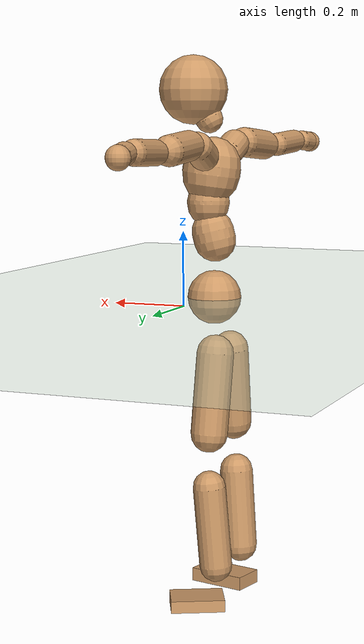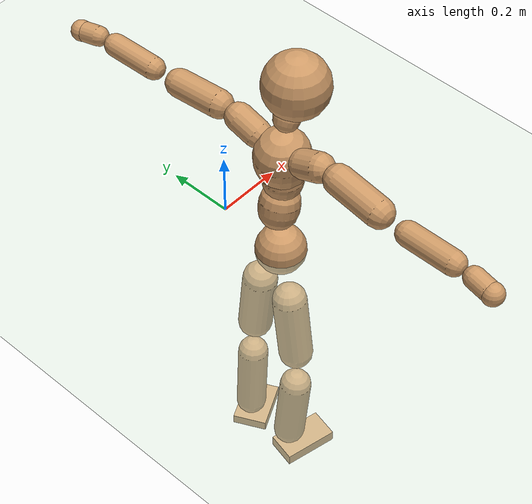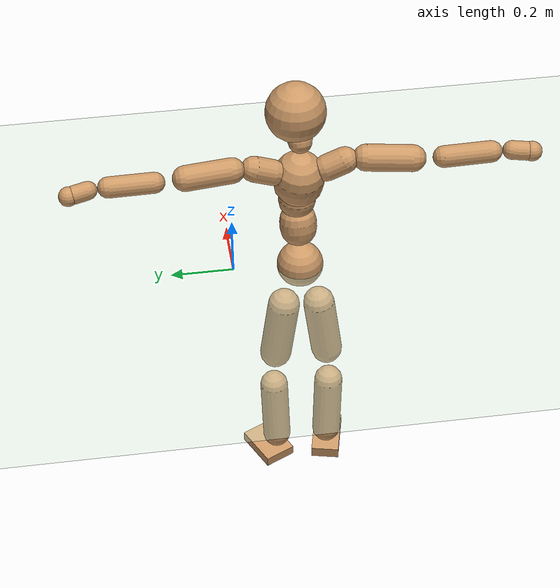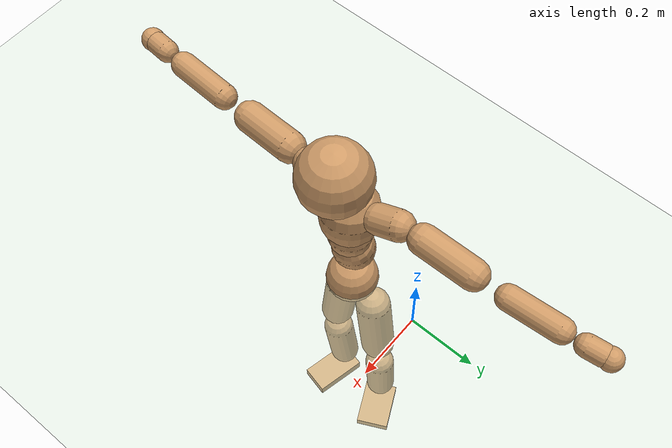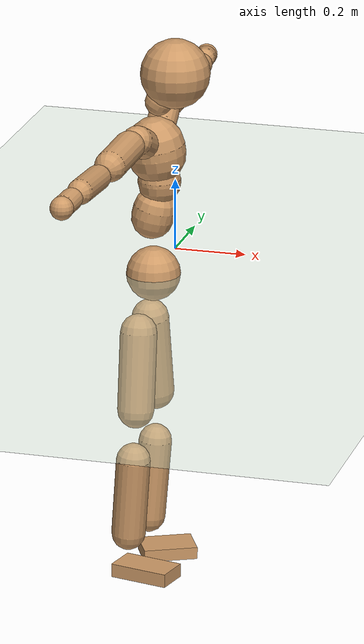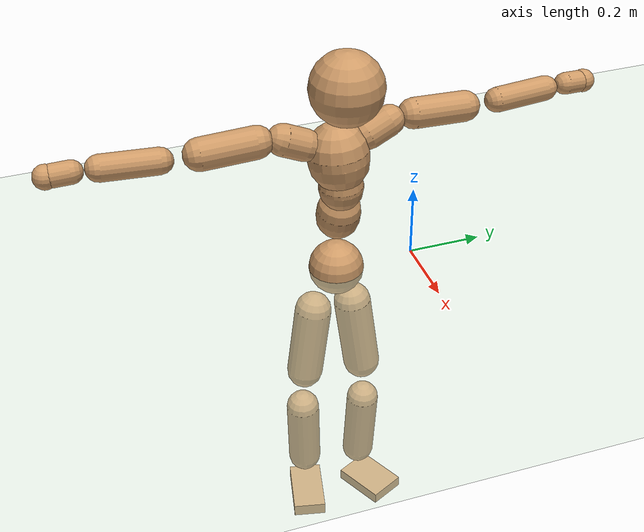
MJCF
<mujoco model="humanoid">
  <compiler coordinate="local" angle="radian"/>
  <default>
    <joint damping="0.0" armature="0.01" stiffness="0.0" limited="true"/>
    <geom conaffinity="1" condim="3" contype="7" margin="0.001" rgba="0.8 0.6 .4 1"/>
  </default>
  <asset>
    <texture type="skybox" builtin="gradient" rgb1=".4 .5 .6" rgb2="0 0 0" width="100" height="100"/>
    <texture builtin="flat" height="1278" mark="cross" markrgb="1 1 1" name="texgeom" random="0.01" rgb1="0.8 0.6 0.4" rgb2="0.8 0.6 0.4" type="cube" width="127"/>
    <texture builtin="checker" height="100" name="texplane" rgb1="0 0 0" rgb2="0.8 0.8 0.8" type="2d" width="100"/>
    <material name="MatPlane" reflectance="0.5" shininess="1" specular="1" texrepeat="60 60" texture="texplane"/>
    <material name="geom" texture="texgeom" texuniform="true"/>
  </asset>
  <worldbody>
    <light cutoff="100" diffuse="1 1 1" dir="-0 0 -1.3" directional="true" exponent="1" pos="0 0 1.3" specular=".1 .1 .1"/>
    <geom conaffinity="1" condim="3" name="floor" pos="0 0 0" rgba="0.8 0.9 0.8 1" size="100 100 .2" type="plane" material="MatPlane"/>
    <body name="Pelvis" pos="-0.0014 -0.2155 -0.001">
      <freejoint name="Pelvis"/>
      <geom type="sphere" contype="1" conaffinity="1" density="500" size="0.0749" pos="0.0000 0.0000 0.0000" name="Pelvis"/>
      <body name="L_Hip" pos="-0.0276 0.0471 -0.0742">
        <joint name="L_Hip_x" type="hinge" pos="0 0 0" axis="1 0 0" stiffness="800" damping="80" armature="0.02" range="-180.0000 180.0000"/>
        <joint name="L_Hip_y" type="hinge" pos="0 0 0" axis="0 1 0" stiffness="800" damping="80" armature="0.02" range="-180.0000 180.0000"/>
        <joint name="L_Hip_z" type="hinge" pos="0 0 0" axis="0 0 1" stiffness="800" damping="80" armature="0.02" range="-180.0000 180.0000"/>
        <geom type="capsule" contype="1" conaffinity="1" density="500" fromto="0.0024 0.0094 -0.0747 0.0097 0.0377 -0.2987" size="0.0515" name="L_Hip"/>
        <body name="L_Knee" pos="0.0121 0.0471 -0.3734">
          <joint name="L_Knee_x" type="hinge" pos="0 0 0" axis="1 0 0" stiffness="800" damping="80" armature="0.02" range="-180.0000 180.0000"/>
          <joint name="L_Knee_y" type="hinge" pos="0 0 0" axis="0 1 0" stiffness="800" damping="80" armature="0.02" range="-180.0000 180.0000"/>
          <joint name="L_Knee_z" type="hinge" pos="0 0 0" axis="0 0 1" stiffness="800" damping="80" armature="0.02" range="-180.0000 180.0000"/>
          <geom type="capsule" contype="1" conaffinity="1" density="500" fromto="-0.0057 -0.0019 -0.0751 -0.0230 -0.0074 -0.3004" size="0.0459" name="L_Knee"/>
          <body name="L_Ankle" pos="-0.0287 -0.0093 -0.3755">
            <joint name="L_Ankle_x" type="hinge" pos="0 0 0" axis="1 0 0" stiffness="800" damping="80" armature="0.02" range="-180.0000 180.0000"/>
            <joint name="L_Ankle_y" type="hinge" pos="0 0 0" axis="0 1 0" stiffness="800" damping="80" armature="0.02" range="-180.0000 180.0000"/>
            <joint name="L_Ankle_z" type="hinge" pos="0 0 0" axis="0 0 1" stiffness="800" damping="80" armature="0.02" range="-180.0000 180.0000"/>
            <geom type="box" contype="1" conaffinity="1" density="500" pos="0.0532 0.0263 -0.0279" size="0.075 0.0529 0.0169" quat="0.9739 0.0000 0.0000 0.2270" name="L_Ankle"/>
            <body name="L_Toe" pos="0.1065 0.0525 -0.0559">
              <joint name="L_Toe_x" type="hinge" pos="0 0 0" axis="1 0 0" stiffness="500" damping="50" armature="0.02" range="-180.0000 180.0000"/>
              <joint name="L_Toe_y" type="hinge" pos="0 0 0" axis="0 1 0" stiffness="500" damping="50" armature="0.02" range="-180.0000 180.0000"/>
              <joint name="L_Toe_z" type="hinge" pos="0 0 0" axis="0 0 1" stiffness="500" damping="50" armature="0.02" range="-180.0000 180.0000"/>
              <geom type="box" contype="1" conaffinity="1" density="500" pos="0.0000 0.0000 0.0308" size="0.001 0.0025 0.001" quat="0.9730 0.0000 0.0000 0.2307" name="L_Toe"/>
            </body>
          </body>
        </body>
      </body>
      <body name="R_Hip" pos="-0.0255 -0.0488 -0.0813">
        <joint name="R_Hip_x" type="hinge" pos="0 0 0" axis="1 0 0" stiffness="800" damping="80" armature="0.02" range="-180.0000 180.0000"/>
        <joint name="R_Hip_y" type="hinge" pos="0 0 0" axis="0 1 0" stiffness="800" damping="80" armature="0.02" range="-180.0000 180.0000"/>
        <joint name="R_Hip_z" type="hinge" pos="0 0 0" axis="0 0 1" stiffness="800" damping="80" armature="0.02" range="-180.0000 180.0000"/>
        <geom type="capsule" contype="1" conaffinity="1" density="500" fromto="-0.0001 -0.0091 -0.0722 -0.0003 -0.0365 -0.2887" size="0.0507" name="R_Hip"/>
        <body name="R_Knee" pos="-0.0004 -0.0457 -0.3609">
          <joint name="R_Knee_x" type="hinge" pos="0 0 0" axis="1 0 0" stiffness="800" damping="80" armature="0.02" range="-180.0000 180.0000"/>
          <joint name="R_Knee_y" type="hinge" pos="0 0 0" axis="0 1 0" stiffness="800" damping="80" armature="0.02" range="-180.0000 180.0000"/>
          <joint name="R_Knee_z" type="hinge" pos="0 0 0" axis="0 0 1" stiffness="800" damping="80" armature="0.02" range="-180.0000 180.0000"/>
          <geom type="capsule" contype="1" conaffinity="1" density="500" fromto="-0.0055 0.0029 -0.0734 -0.0220 0.0115 -0.2936" size="0.0472" name="R_Knee"/>
          <body name="R_Ankle" pos="-0.0275 0.0144 -0.367">
            <joint name="R_Ankle_x" type="hinge" pos="0 0 0" axis="1 0 0" stiffness="800" damping="80" armature="0.02" range="-180.0000 180.0000"/>
            <joint name="R_Ankle_y" type="hinge" pos="0 0 0" axis="0 1 0" stiffness="800" damping="80" armature="0.02" range="-180.0000 180.0000"/>
            <joint name="R_Ankle_z" type="hinge" pos="0 0 0" axis="0 0 1" stiffness="800" damping="80" armature="0.02" range="-180.0000 180.0000"/>
            <geom type="box" contype="1" conaffinity="1" density="500" pos="0.0585 -0.0132 -0.0286" size="0.0835 0.0463 0.019" quat="0.9939 0.0000 0.0000 -0.1104" name="R_Ankle"/>
            <body name="R_Toe" pos="0.117 -0.0263 -0.0572">
              <joint name="R_Toe_x" type="hinge" pos="0 0 0" axis="1 0 0" stiffness="500" damping="50" armature="0.02" range="-180.0000 180.0000"/>
              <joint name="R_Toe_y" type="hinge" pos="0 0 0" axis="0 1 0" stiffness="500" damping="50" armature="0.02" range="-180.0000 180.0000"/>
              <joint name="R_Toe_z" type="hinge" pos="0 0 0" axis="0 0 1" stiffness="500" damping="50" armature="0.02" range="-180.0000 180.0000"/>
              <geom type="box" contype="1" conaffinity="1" density="500" pos="0.0000 0.0000 0.0317" size="0.0009 0.0022 0.0011" quat="0.9949 0.0000 0.0000 -0.1006" name="R_Toe"/>
            </body>
          </body>
        </body>
      </body>
      <body name="Torso" pos="-0.0167 0.0037 0.1058">
        <joint name="Torso_x" type="hinge" pos="0 0 0" axis="1 0 0" stiffness="1000" damping="100" armature="0.02" range="-180.0000 180.0000"/>
        <joint name="Torso_y" type="hinge" pos="0 0 0" axis="0 1 0" stiffness="1000" damping="100" armature="0.02" range="-180.0000 180.0000"/>
        <joint name="Torso_z" type="hinge" pos="0 0 0" axis="0 0 1" stiffness="1000" damping="100" armature="0.02" range="-180.0000 180.0000"/>
        <geom type="capsule" contype="1" conaffinity="1" density="500" fromto="0.0190 0.0026 0.0794 0.0127 0.0017 0.0530" size="0.0586" name="Torso"/>
        <body name="Spine" pos="0.0317 0.0043 0.1324">
          <joint name="Spine_x" type="hinge" pos="0 0 0" axis="1 0 0" stiffness="1000" damping="100" armature="0.02" range="-180.0000 180.0000"/>
          <joint name="Spine_y" type="hinge" pos="0 0 0" axis="0 1 0" stiffness="1000" damping="100" armature="0.02" range="-180.0000 180.0000"/>
          <joint name="Spine_z" type="hinge" pos="0 0 0" axis="0 0 1" stiffness="1000" damping="100" armature="0.02" range="-180.0000 180.0000"/>
          <geom type="capsule" contype="1" conaffinity="1" density="500" fromto="-0.0003 -0.0009 0.0315 -0.0002 -0.0006 0.0210" size="0.0589" name="Spine"/>
          <body name="Chest" pos="-0.0004 -0.0014 0.0526">
            <joint name="Chest_x" type="hinge" pos="0 0 0" axis="1 0 0" stiffness="1000" damping="100" armature="0.02" range="-180.0000 180.0000"/>
            <joint name="Chest_y" type="hinge" pos="0 0 0" axis="0 1 0" stiffness="1000" damping="100" armature="0.02" range="-180.0000 180.0000"/>
            <joint name="Chest_z" type="hinge" pos="0 0 0" axis="0 0 1" stiffness="1000" damping="100" armature="0.02" range="-180.0000 180.0000"/>
            <geom type="capsule" contype="1" conaffinity="1" density="500" fromto="-0.0090 -0.0050 0.0742 -0.0060 -0.0033 0.0494" size="0.0802" name="Chest"/>
            <body name="Neck" pos="-0.0095 -0.0118 0.1807">
              <joint name="Neck_x" type="hinge" pos="0 0 0" axis="1 0 0" stiffness="500" damping="50" armature="0.02" range="-180.0000 180.0000"/>
              <joint name="Neck_y" type="hinge" pos="0 0 0" axis="0 1 0" stiffness="500" damping="50" armature="0.02" range="-180.0000 180.0000"/>
              <joint name="Neck_z" type="hinge" pos="0 0 0" axis="0 0 1" stiffness="500" damping="50" armature="0.02" range="-180.0000 180.0000"/>
              <geom type="capsule" contype="1" conaffinity="1" density="500" fromto="0.0110 0.0019 0.0201 0.0438 0.0075 0.0803" size="0.0381" name="Neck"/>
              <body name="Head" pos="0.0548 0.0094 0.1004">
                <joint name="Head_x" type="hinge" pos="0 0 0" axis="1 0 0" stiffness="500" damping="50" armature="0.02" range="-180.0000 180.0000"/>
                <joint name="Head_y" type="hinge" pos="0 0 0" axis="0 1 0" stiffness="500" damping="50" armature="0.02" range="-180.0000 180.0000"/>
                <joint name="Head_z" type="hinge" pos="0 0 0" axis="0 0 1" stiffness="500" damping="50" armature="0.02" range="-180.0000 180.0000"/>
                <geom type="sphere" contype="1" conaffinity="1" density="500" size="0.0951" pos="0.0000 0.0000 0.0000" name="Head"/>
              </body>
            </body>
            <body name="L_Thorax" pos="-0.0164 0.0571 0.0951">
              <joint name="L_Thorax_x" type="hinge" pos="0 0 0" axis="1 0 0" stiffness="500" damping="50" armature="0.02" range="-180.0000 180.0000"/>
              <joint name="L_Thorax_y" type="hinge" pos="0 0 0" axis="0 1 0" stiffness="500" damping="50" armature="0.02" range="-180.0000 180.0000"/>
              <joint name="L_Thorax_z" type="hinge" pos="0 0 0" axis="0 0 1" stiffness="500" damping="50" armature="0.02" range="-180.0000 180.0000"/>
              <geom type="capsule" contype="1" conaffinity="1" density="500" fromto="-0.0019 0.0199 0.0085 -0.0077 0.0797 0.0341" size="0.0407" name="L_Thorax"/>
              <body name="L_Shoulder" pos="-0.0096 0.0996 0.0426">
                <joint name="L_Shoulder_x" type="hinge" pos="0 0 0" axis="1 0 0" stiffness="500" damping="50" armature="0.02" range="-720.0000 720.0000"/>
                <joint name="L_Shoulder_y" type="hinge" pos="0 0 0" axis="0 1 0" stiffness="500" damping="50" armature="0.02" range="-720.0000 720.0000"/>
                <joint name="L_Shoulder_z" type="hinge" pos="0 0 0" axis="0 0 1" stiffness="500" damping="50" armature="0.02" range="-720.0000 720.0000"/>
                <geom type="capsule" contype="1" conaffinity="1" density="500" fromto="-0.0020 0.0479 -0.0031 -0.0078 0.1914 -0.0123" size="0.0406" name="L_Shoulder"/>
                <body name="L_Elbow" pos="-0.0098 0.2393 -0.0153">
                  <joint name="L_Elbow_x" type="hinge" pos="0 0 0" axis="1 0 0" stiffness="500" damping="50" armature="0.02" range="-720.0000 720.0000"/>
                  <joint name="L_Elbow_y" type="hinge" pos="0 0 0" axis="0 1 0" stiffness="500" damping="50" armature="0.02" range="-720.0000 720.0000"/>
                  <joint name="L_Elbow_z" type="hinge" pos="0 0 0" axis="0 0 1" stiffness="500" damping="50" armature="0.02" range="-720.0000 720.0000"/>
                  <geom type="capsule" contype="1" conaffinity="1" density="500" fromto="-0.0026 0.0468 0.0016 -0.0104 0.1874 0.0063" size="0.0331" name="L_Elbow"/>
                  <body name="L_Wrist" pos="-0.013 0.2342 0.0079">
                    <joint name="L_Wrist_x" type="hinge" pos="0 0 0" axis="1 0 0" stiffness="300" damping="30" armature="0.02" range="-180.0000 180.0000"/>
                    <joint name="L_Wrist_y" type="hinge" pos="0 0 0" axis="0 1 0" stiffness="300" damping="30" armature="0.02" range="-180.0000 180.0000"/>
                    <joint name="L_Wrist_z" type="hinge" pos="0 0 0" axis="0 0 1" stiffness="300" damping="30" armature="0.02" range="-180.0000 180.0000"/>
                    <geom type="capsule" contype="1" conaffinity="1" density="500" fromto="-0.0028 0.0150 -0.0018 -0.0110 0.0599 -0.0074" size="0.029" name="L_Wrist"/>
                    <body name="L_Hand" pos="-0.0138 0.0749 -0.0092">
                      <joint name="L_Hand_x" type="hinge" pos="0 0 0" axis="1 0 0" stiffness="300" damping="30" armature="0.02" range="-180.0000 180.0000"/>
                      <joint name="L_Hand_y" type="hinge" pos="0 0 0" axis="0 1 0" stiffness="300" damping="30" armature="0.02" range="-180.0000 180.0000"/>
                      <joint name="L_Hand_z" type="hinge" pos="0 0 0" axis="0 0 1" stiffness="300" damping="30" armature="0.02" range="-180.0000 180.0000"/>
                      <geom type="sphere" contype="1" conaffinity="1" density="500" size="0.0307" pos="0.0000 0.0000 0.0000" name="L_Hand"/>
                    </body>
                  </body>
                </body>
              </body>
            </body>
            <body name="R_Thorax" pos="-0.0191 -0.0702 0.095">
              <joint name="R_Thorax_x" type="hinge" pos="0 0 0" axis="1 0 0" stiffness="500" damping="50" armature="0.02" range="-180.0000 180.0000"/>
              <joint name="R_Thorax_y" type="hinge" pos="0 0 0" axis="0 1 0" stiffness="500" damping="50" armature="0.02" range="-180.0000 180.0000"/>
              <joint name="R_Thorax_z" type="hinge" pos="0 0 0" axis="0 0 1" stiffness="500" damping="50" armature="0.02" range="-180.0000 180.0000"/>
              <geom type="capsule" contype="1" conaffinity="1" density="500" fromto="-0.0003 -0.0188 0.0085 -0.0011 -0.0752 0.0339" size="0.042" name="R_Thorax"/>
              <body name="R_Shoulder" pos="-0.0014 -0.094 0.0423">
                <joint name="R_Shoulder_x" type="hinge" pos="0 0 0" axis="1 0 0" stiffness="500" damping="50" armature="0.02" range="-720.0000 720.0000"/>
                <joint name="R_Shoulder_y" type="hinge" pos="0 0 0" axis="0 1 0" stiffness="500" damping="50" armature="0.02" range="-720.0000 720.0000"/>
                <joint name="R_Shoulder_z" type="hinge" pos="0 0 0" axis="0 0 1" stiffness="500" damping="50" armature="0.02" range="-720.0000 720.0000"/>
                <geom type="capsule" contype="1" conaffinity="1" density="500" fromto="-0.0032 -0.0476 -0.0038 -0.0129 -0.1906 -0.0152" size="0.0428" name="R_Shoulder"/>
                <body name="R_Elbow" pos="-0.0161 -0.2382 -0.019">
                  <joint name="R_Elbow_x" type="hinge" pos="0 0 0" axis="1 0 0" stiffness="500" damping="50" armature="0.02" range="-720.0000 720.0000"/>
                  <joint name="R_Elbow_y" type="hinge" pos="0 0 0" axis="0 1 0" stiffness="500" damping="50" armature="0.02" range="-720.0000 720.0000"/>
                  <joint name="R_Elbow_z" type="hinge" pos="0 0 0" axis="0 0 1" stiffness="500" damping="50" armature="0.02" range="-720.0000 720.0000"/>
                  <geom type="capsule" contype="1" conaffinity="1" density="500" fromto="-0.0015 -0.0494 0.0023 -0.0059 -0.1974 0.0094" size="0.0344" name="R_Elbow"/>
                  <body name="R_Wrist" pos="-0.0074 -0.2468 0.0117">
                    <joint name="R_Wrist_x" type="hinge" pos="0 0 0" axis="1 0 0" stiffness="300" damping="30" armature="0.02" range="-180.0000 180.0000"/>
                    <joint name="R_Wrist_y" type="hinge" pos="0 0 0" axis="0 1 0" stiffness="300" damping="30" armature="0.02" range="-180.0000 180.0000"/>
                    <joint name="R_Wrist_z" type="hinge" pos="0 0 0" axis="0 0 1" stiffness="300" damping="30" armature="0.02" range="-180.0000 180.0000"/>
                    <geom type="capsule" contype="1" conaffinity="1" density="500" fromto="-0.0019 -0.0155 -0.0015 -0.0075 -0.0621 -0.0058" size="0.03" name="R_Wrist"/>
                    <body name="R_Hand" pos="-0.0093 -0.0777 -0.0073">
                      <joint name="R_Hand_x" type="hinge" pos="0 0 0" axis="1 0 0" stiffness="300" damping="30" armature="0.02" range="-180.0000 180.0000"/>
                      <joint name="R_Hand_y" type="hinge" pos="0 0 0" axis="0 1 0" stiffness="300" damping="30" armature="0.02" range="-180.0000 180.0000"/>
                      <joint name="R_Hand_z" type="hinge" pos="0 0 0" axis="0 0 1" stiffness="300" damping="30" armature="0.02" range="-180.0000 180.0000"/>
                      <geom type="sphere" contype="1" conaffinity="1" density="500" size="0.0315" pos="0.0000 0.0000 0.0000" name="R_Hand"/>
                    </body>
                  </body>
                </body>
              </body>
            </body>
          </body>
        </body>
      </body>
    </body>
  </worldbody>
  <actuator>
    <motor name="L_Hip_x" joint="L_Hip_x" gear="500"/>
    <motor name="L_Hip_y" joint="L_Hip_y" gear="500"/>
    <motor name="L_Hip_z" joint="L_Hip_z" gear="500"/>
    <motor name="L_Knee_x" joint="L_Knee_x" gear="500"/>
    <motor name="L_Knee_y" joint="L_Knee_y" gear="500"/>
    <motor name="L_Knee_z" joint="L_Knee_z" gear="500"/>
    <motor name="L_Ankle_x" joint="L_Ankle_x" gear="500"/>
    <motor name="L_Ankle_y" joint="L_Ankle_y" gear="500"/>
    <motor name="L_Ankle_z" joint="L_Ankle_z" gear="500"/>
    <motor name="L_Toe_x" joint="L_Toe_x" gear="500"/>
    <motor name="L_Toe_y" joint="L_Toe_y" gear="500"/>
    <motor name="L_Toe_z" joint="L_Toe_z" gear="500"/>
    <motor name="R_Hip_x" joint="R_Hip_x" gear="500"/>
    <motor name="R_Hip_y" joint="R_Hip_y" gear="500"/>
    <motor name="R_Hip_z" joint="R_Hip_z" gear="500"/>
    <motor name="R_Knee_x" joint="R_Knee_x" gear="500"/>
    <motor name="R_Knee_y" joint="R_Knee_y" gear="500"/>
    <motor name="R_Knee_z" joint="R_Knee_z" gear="500"/>
    <motor name="R_Ankle_x" joint="R_Ankle_x" gear="500"/>
    <motor name="R_Ankle_y" joint="R_Ankle_y" gear="500"/>
    <motor name="R_Ankle_z" joint="R_Ankle_z" gear="500"/>
    <motor name="R_Toe_x" joint="R_Toe_x" gear="500"/>
    <motor name="R_Toe_y" joint="R_Toe_y" gear="500"/>
    <motor name="R_Toe_z" joint="R_Toe_z" gear="500"/>
    <motor name="Torso_x" joint="Torso_x" gear="500"/>
    <motor name="Torso_y" joint="Torso_y" gear="500"/>
    <motor name="Torso_z" joint="Torso_z" gear="500"/>
    <motor name="Spine_x" joint="Spine_x" gear="500"/>
    <motor name="Spine_y" joint="Spine_y" gear="500"/>
    <motor name="Spine_z" joint="Spine_z" gear="500"/>
    <motor name="Chest_x" joint="Chest_x" gear="500"/>
    <motor name="Chest_y" joint="Chest_y" gear="500"/>
    <motor name="Chest_z" joint="Chest_z" gear="500"/>
    <motor name="Neck_x" joint="Neck_x" gear="500"/>
    <motor name="Neck_y" joint="Neck_y" gear="500"/>
    <motor name="Neck_z" joint="Neck_z" gear="500"/>
    <motor name="Head_x" joint="Head_x" gear="500"/>
    <motor name="Head_y" joint="Head_y" gear="500"/>
    <motor name="Head_z" joint="Head_z" gear="500"/>
    <motor name="L_Thorax_x" joint="L_Thorax_x" gear="500"/>
    <motor name="L_Thorax_y" joint="L_Thorax_y" gear="500"/>
    <motor name="L_Thorax_z" joint="L_Thorax_z" gear="500"/>
    <motor name="L_Shoulder_x" joint="L_Shoulder_x" gear="500"/>
    <motor name="L_Shoulder_y" joint="L_Shoulder_y" gear="500"/>
    <motor name="L_Shoulder_z" joint="L_Shoulder_z" gear="500"/>
    <motor name="L_Elbow_x" joint="L_Elbow_x" gear="500"/>
    <motor name="L_Elbow_y" joint="L_Elbow_y" gear="500"/>
    <motor name="L_Elbow_z" joint="L_Elbow_z" gear="500"/>
    <motor name="L_Wrist_x" joint="L_Wrist_x" gear="500"/>
    <motor name="L_Wrist_y" joint="L_Wrist_y" gear="500"/>
    <motor name="L_Wrist_z" joint="L_Wrist_z" gear="500"/>
    <motor name="L_Hand_x" joint="L_Hand_x" gear="500"/>
    <motor name="L_Hand_y" joint="L_Hand_y" gear="500"/>
    <motor name="L_Hand_z" joint="L_Hand_z" gear="500"/>
    <motor name="R_Thorax_x" joint="R_Thorax_x" gear="500"/>
    <motor name="R_Thorax_y" joint="R_Thorax_y" gear="500"/>
    <motor name="R_Thorax_z" joint="R_Thorax_z" gear="500"/>
    <motor name="R_Shoulder_x" joint="R_Shoulder_x" gear="500"/>
    <motor name="R_Shoulder_y" joint="R_Shoulder_y" gear="500"/>
    <motor name="R_Shoulder_z" joint="R_Shoulder_z" gear="500"/>
    <motor name="R_Elbow_x" joint="R_Elbow_x" gear="500"/>
    <motor name="R_Elbow_y" joint="R_Elbow_y" gear="500"/>
    <motor name="R_Elbow_z" joint="R_Elbow_z" gear="500"/>
    <motor name="R_Wrist_x" joint="R_Wrist_x" gear="500"/>
    <motor name="R_Wrist_y" joint="R_Wrist_y" gear="500"/>
    <motor name="R_Wrist_z" joint="R_Wrist_z" gear="500"/>
    <motor name="R_Hand_x" joint="R_Hand_x" gear="500"/>
    <motor name="R_Hand_y" joint="R_Hand_y" gear="500"/>
    <motor name="R_Hand_z" joint="R_Hand_z" gear="500"/>
  </actuator>
  <contact>
    <exclude body1="Torso" body2="Chest"/>
    <exclude body1="Head" body2="Chest"/>
    <exclude body1="R_Knee" body2="R_Toe"/>
    <exclude body1="R_Knee" body2="L_Ankle"/>
    <exclude body1="R_Knee" body2="L_Toe"/>
    <exclude body1="L_Knee" body2="L_Toe"/>
    <exclude body1="L_Knee" body2="R_Ankle"/>
    <exclude body1="L_Knee" body2="R_Toe"/>
    <exclude body1="L_Shoulder" body2="Chest"/>
    <exclude body1="R_Shoulder" body2="Chest"/>
  </contact>
  <sensor/>
  <size njmax="700" nconmax="700"/>
</mujoco>
